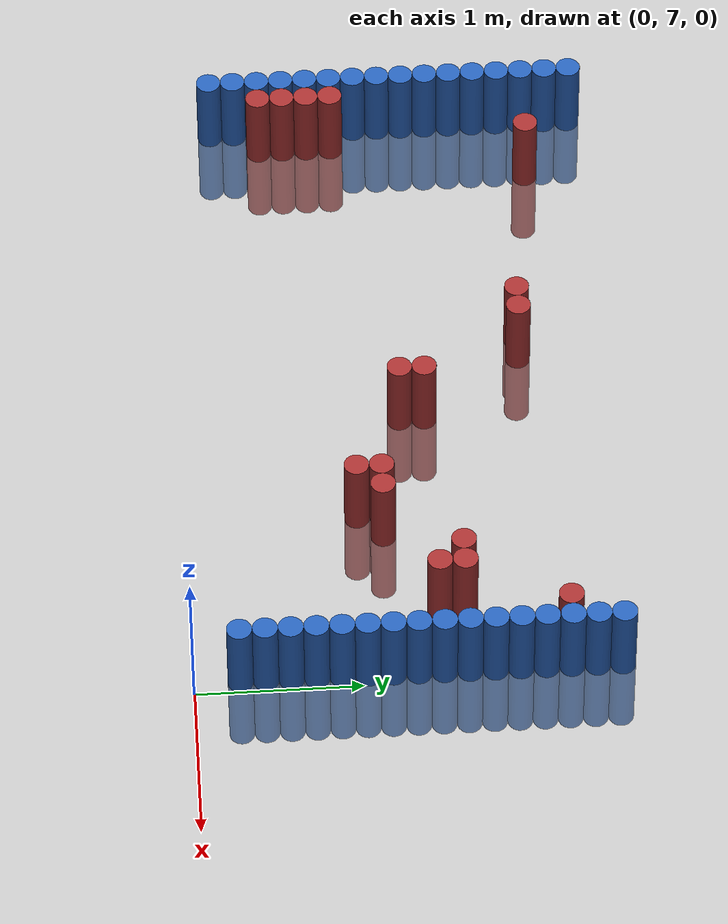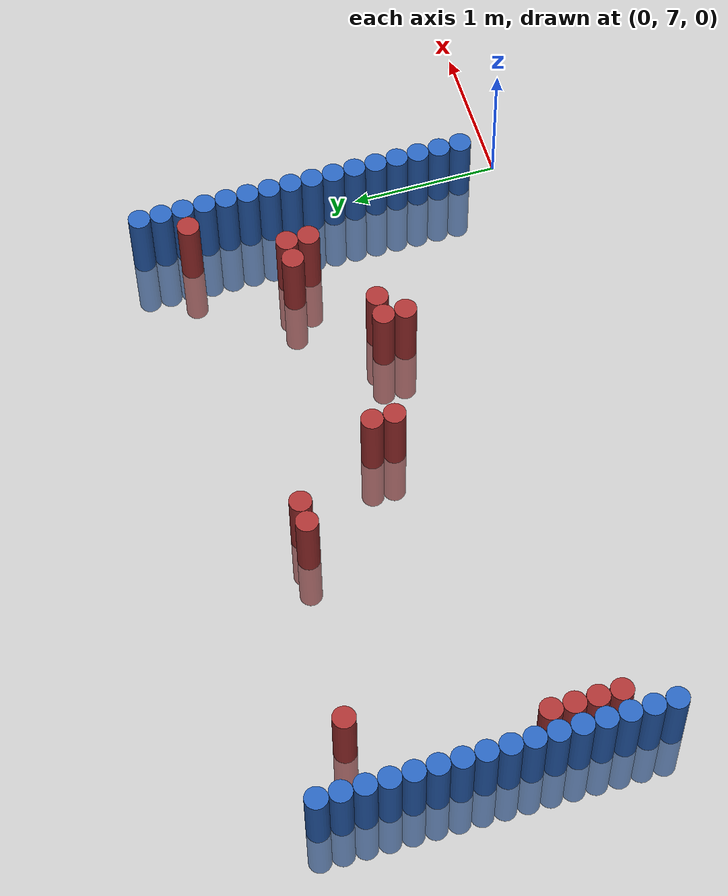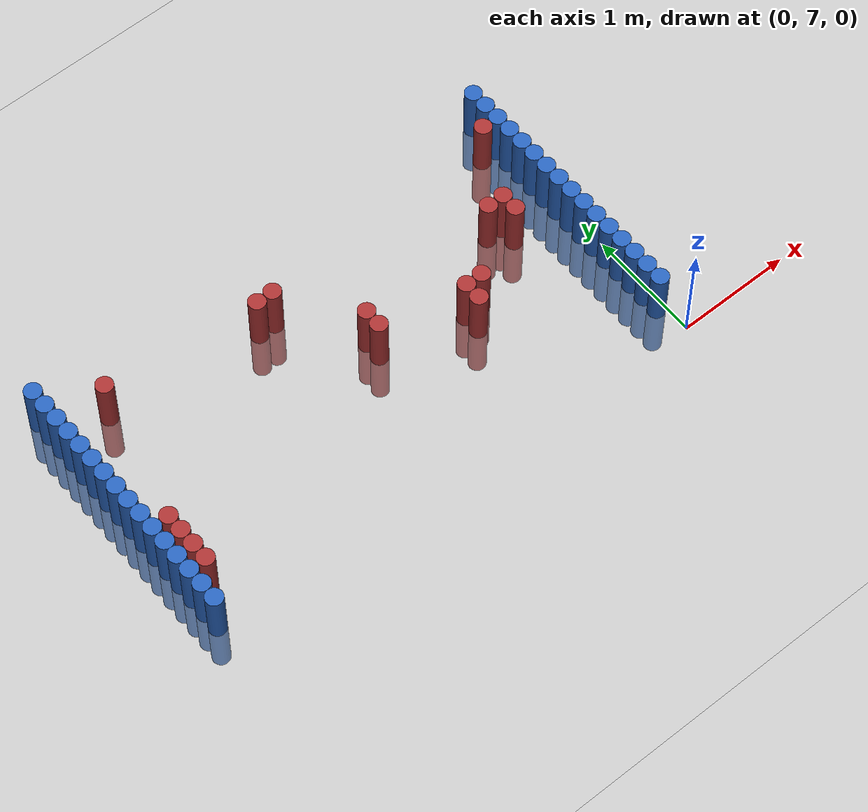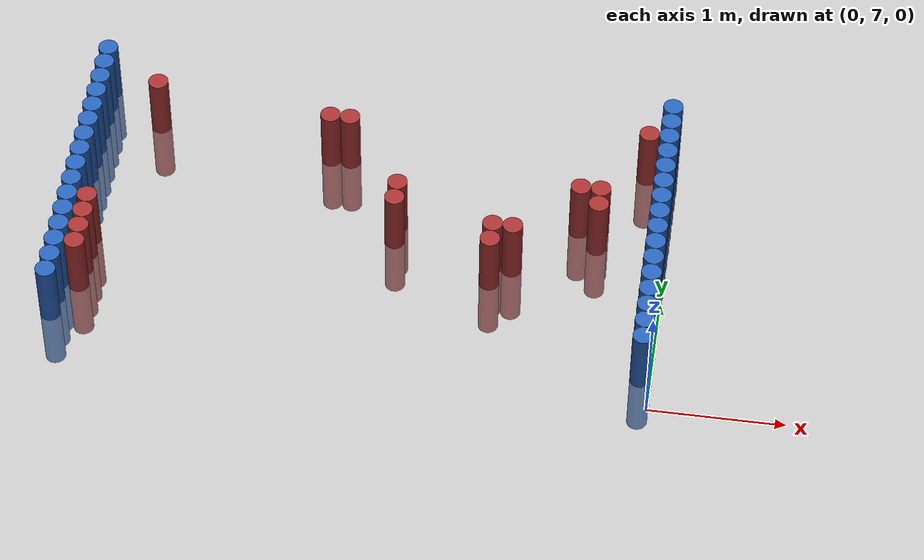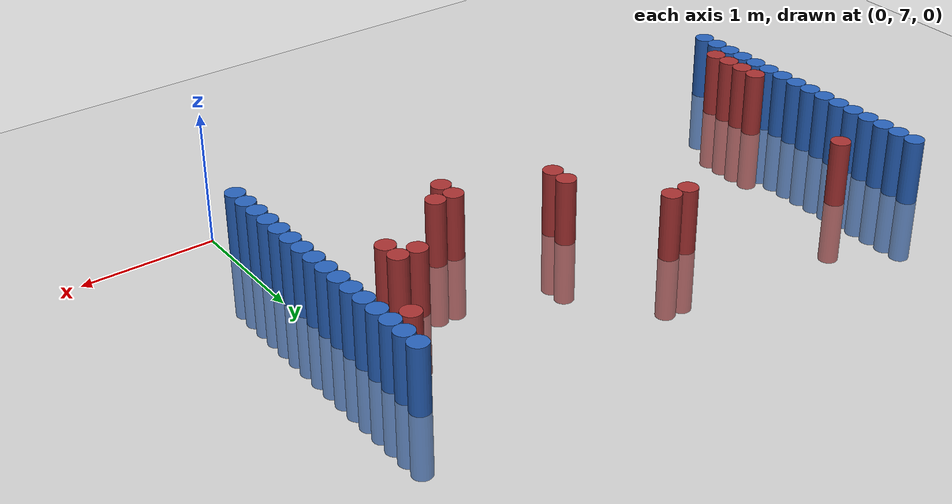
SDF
<sdf version="1.6">
 <world name="world_107">
  <model name="ground_plane">
   <static>1</static>
   <link name="link">
    <collision name="collision">
     <geometry><plane><normal>0 0 1</normal><size>100 100</size></plane></geometry>
     <surface><friction><ode><mu>100</mu><mu2>50</mu2></ode></friction></surface>
    </collision>
    <visual name="visual">
     <cast_shadows>0</cast_shadows>
     <geometry><plane><normal>0 0 1</normal><size>100 100</size></plane></geometry>
     <material>
      <script><uri>file://media/materials/scripts/gazebo.material</uri><name>Gazebo/Grey</name></script>
     </material>
    </visual>
   </link>
  </model>
  <model name="unit_cylinder_110">
   <static>1</static>
   <pose>-4.425000 7.275000 0.000000 0.000000 0.000000 0.000000</pose>
   <link name="link">
    <inertial>
     <mass>1</mass>
     <inertia><ixx>0.145833</ixx><ixy>0</ixy><ixz>0</ixz><iyy>0.145833</iyy><iyz>0</iyz><izz>0.125</izz></inertia>
    </inertial>
    <collision name="collision">
     <geometry><cylinder><radius>0.075000</radius><length>1</length></cylinder></geometry>
    </collision>
    <visual name="visual">
     <geometry><cylinder><radius>0.075000</radius><length>1</length></cylinder></geometry>
     <material>
      <ambient>0.152000 0.379000 0.720000 1</ambient>
      <diffuse>0.152000 0.379000 0.720000 1</diffuse>
     </material>
     <material>
      <script><name>Gazebo/Grey</name><uri>file://media/materials/scripts/gazebo.material</uri></script>
     </material>
    </visual>
   </link>
  </model>
  <model name="unit_cylinder_111">
   <static>1</static>
   <pose>-4.425000 7.425000 0.000000 0.000000 0.000000 0.000000</pose>
   <link name="link">
    <inertial>
     <mass>1</mass>
     <inertia><ixx>0.145833</ixx><ixy>0</ixy><ixz>0</ixz><iyy>0.145833</iyy><iyz>0</iyz><izz>0.125</izz></inertia>
    </inertial>
    <collision name="collision">
     <geometry><cylinder><radius>0.075000</radius><length>1</length></cylinder></geometry>
    </collision>
    <visual name="visual">
     <geometry><cylinder><radius>0.075000</radius><length>1</length></cylinder></geometry>
     <material>
      <ambient>0.152000 0.379000 0.720000 1</ambient>
      <diffuse>0.152000 0.379000 0.720000 1</diffuse>
     </material>
     <material>
      <script><name>Gazebo/Grey</name><uri>file://media/materials/scripts/gazebo.material</uri></script>
     </material>
    </visual>
   </link>
  </model>
  <model name="unit_cylinder_112">
   <static>1</static>
   <pose>-4.425000 7.575000 0.000000 0.000000 0.000000 0.000000</pose>
   <link name="link">
    <inertial>
     <mass>1</mass>
     <inertia><ixx>0.145833</ixx><ixy>0</ixy><ixz>0</ixz><iyy>0.145833</iyy><iyz>0</iyz><izz>0.125</izz></inertia>
    </inertial>
    <collision name="collision">
     <geometry><cylinder><radius>0.075000</radius><length>1</length></cylinder></geometry>
    </collision>
    <visual name="visual">
     <geometry><cylinder><radius>0.075000</radius><length>1</length></cylinder></geometry>
     <material>
      <ambient>0.152000 0.379000 0.720000 1</ambient>
      <diffuse>0.152000 0.379000 0.720000 1</diffuse>
     </material>
     <material>
      <script><name>Gazebo/Grey</name><uri>file://media/materials/scripts/gazebo.material</uri></script>
     </material>
    </visual>
   </link>
  </model>
  <model name="unit_cylinder_113">
   <static>1</static>
   <pose>-4.425000 7.725000 0.000000 0.000000 0.000000 0.000000</pose>
   <link name="link">
    <inertial>
     <mass>1</mass>
     <inertia><ixx>0.145833</ixx><ixy>0</ixy><ixz>0</ixz><iyy>0.145833</iyy><iyz>0</iyz><izz>0.125</izz></inertia>
    </inertial>
    <collision name="collision">
     <geometry><cylinder><radius>0.075000</radius><length>1</length></cylinder></geometry>
    </collision>
    <visual name="visual">
     <geometry><cylinder><radius>0.075000</radius><length>1</length></cylinder></geometry>
     <material>
      <ambient>0.152000 0.379000 0.720000 1</ambient>
      <diffuse>0.152000 0.379000 0.720000 1</diffuse>
     </material>
     <material>
      <script><name>Gazebo/Grey</name><uri>file://media/materials/scripts/gazebo.material</uri></script>
     </material>
    </visual>
   </link>
  </model>
  <model name="unit_cylinder_114">
   <static>1</static>
   <pose>-4.425000 7.875000 0.000000 0.000000 0.000000 0.000000</pose>
   <link name="link">
    <inertial>
     <mass>1</mass>
     <inertia><ixx>0.145833</ixx><ixy>0</ixy><ixz>0</ixz><iyy>0.145833</iyy><iyz>0</iyz><izz>0.125</izz></inertia>
    </inertial>
    <collision name="collision">
     <geometry><cylinder><radius>0.075000</radius><length>1</length></cylinder></geometry>
    </collision>
    <visual name="visual">
     <geometry><cylinder><radius>0.075000</radius><length>1</length></cylinder></geometry>
     <material>
      <ambient>0.152000 0.379000 0.720000 1</ambient>
      <diffuse>0.152000 0.379000 0.720000 1</diffuse>
     </material>
     <material>
      <script><name>Gazebo/Grey</name><uri>file://media/materials/scripts/gazebo.material</uri></script>
     </material>
    </visual>
   </link>
  </model>
  <model name="unit_cylinder_115">
   <static>1</static>
   <pose>-4.425000 8.025000 0.000000 0.000000 0.000000 0.000000</pose>
   <link name="link">
    <inertial>
     <mass>1</mass>
     <inertia><ixx>0.145833</ixx><ixy>0</ixy><ixz>0</ixz><iyy>0.145833</iyy><iyz>0</iyz><izz>0.125</izz></inertia>
    </inertial>
    <collision name="collision">
     <geometry><cylinder><radius>0.075000</radius><length>1</length></cylinder></geometry>
    </collision>
    <visual name="visual">
     <geometry><cylinder><radius>0.075000</radius><length>1</length></cylinder></geometry>
     <material>
      <ambient>0.152000 0.379000 0.720000 1</ambient>
      <diffuse>0.152000 0.379000 0.720000 1</diffuse>
     </material>
     <material>
      <script><name>Gazebo/Grey</name><uri>file://media/materials/scripts/gazebo.material</uri></script>
     </material>
    </visual>
   </link>
  </model>
  <model name="unit_cylinder_116">
   <static>1</static>
   <pose>-4.425000 8.175000 0.000000 0.000000 0.000000 0.000000</pose>
   <link name="link">
    <inertial>
     <mass>1</mass>
     <inertia><ixx>0.145833</ixx><ixy>0</ixy><ixz>0</ixz><iyy>0.145833</iyy><iyz>0</iyz><izz>0.125</izz></inertia>
    </inertial>
    <collision name="collision">
     <geometry><cylinder><radius>0.075000</radius><length>1</length></cylinder></geometry>
    </collision>
    <visual name="visual">
     <geometry><cylinder><radius>0.075000</radius><length>1</length></cylinder></geometry>
     <material>
      <ambient>0.152000 0.379000 0.720000 1</ambient>
      <diffuse>0.152000 0.379000 0.720000 1</diffuse>
     </material>
     <material>
      <script><name>Gazebo/Grey</name><uri>file://media/materials/scripts/gazebo.material</uri></script>
     </material>
    </visual>
   </link>
  </model>
  <model name="unit_cylinder_117">
   <static>1</static>
   <pose>-4.425000 8.325000 0.000000 0.000000 0.000000 0.000000</pose>
   <link name="link">
    <inertial>
     <mass>1</mass>
     <inertia><ixx>0.145833</ixx><ixy>0</ixy><ixz>0</ixz><iyy>0.145833</iyy><iyz>0</iyz><izz>0.125</izz></inertia>
    </inertial>
    <collision name="collision">
     <geometry><cylinder><radius>0.075000</radius><length>1</length></cylinder></geometry>
    </collision>
    <visual name="visual">
     <geometry><cylinder><radius>0.075000</radius><length>1</length></cylinder></geometry>
     <material>
      <ambient>0.152000 0.379000 0.720000 1</ambient>
      <diffuse>0.152000 0.379000 0.720000 1</diffuse>
     </material>
     <material>
      <script><name>Gazebo/Grey</name><uri>file://media/materials/scripts/gazebo.material</uri></script>
     </material>
    </visual>
   </link>
  </model>
  <model name="unit_cylinder_118">
   <static>1</static>
   <pose>-4.425000 8.475000 0.000000 0.000000 0.000000 0.000000</pose>
   <link name="link">
    <inertial>
     <mass>1</mass>
     <inertia><ixx>0.145833</ixx><ixy>0</ixy><ixz>0</ixz><iyy>0.145833</iyy><iyz>0</iyz><izz>0.125</izz></inertia>
    </inertial>
    <collision name="collision">
     <geometry><cylinder><radius>0.075000</radius><length>1</length></cylinder></geometry>
    </collision>
    <visual name="visual">
     <geometry><cylinder><radius>0.075000</radius><length>1</length></cylinder></geometry>
     <material>
      <ambient>0.152000 0.379000 0.720000 1</ambient>
      <diffuse>0.152000 0.379000 0.720000 1</diffuse>
     </material>
     <material>
      <script><name>Gazebo/Grey</name><uri>file://media/materials/scripts/gazebo.material</uri></script>
     </material>
    </visual>
   </link>
  </model>
  <model name="unit_cylinder_119">
   <static>1</static>
   <pose>-4.425000 8.625000 0.000000 0.000000 0.000000 0.000000</pose>
   <link name="link">
    <inertial>
     <mass>1</mass>
     <inertia><ixx>0.145833</ixx><ixy>0</ixy><ixz>0</ixz><iyy>0.145833</iyy><iyz>0</iyz><izz>0.125</izz></inertia>
    </inertial>
    <collision name="collision">
     <geometry><cylinder><radius>0.075000</radius><length>1</length></cylinder></geometry>
    </collision>
    <visual name="visual">
     <geometry><cylinder><radius>0.075000</radius><length>1</length></cylinder></geometry>
     <material>
      <ambient>0.152000 0.379000 0.720000 1</ambient>
      <diffuse>0.152000 0.379000 0.720000 1</diffuse>
     </material>
     <material>
      <script><name>Gazebo/Grey</name><uri>file://media/materials/scripts/gazebo.material</uri></script>
     </material>
    </visual>
   </link>
  </model>
  <model name="unit_cylinder_120">
   <static>1</static>
   <pose>-4.425000 8.775000 0.000000 0.000000 0.000000 0.000000</pose>
   <link name="link">
    <inertial>
     <mass>1</mass>
     <inertia><ixx>0.145833</ixx><ixy>0</ixy><ixz>0</ixz><iyy>0.145833</iyy><iyz>0</iyz><izz>0.125</izz></inertia>
    </inertial>
    <collision name="collision">
     <geometry><cylinder><radius>0.075000</radius><length>1</length></cylinder></geometry>
    </collision>
    <visual name="visual">
     <geometry><cylinder><radius>0.075000</radius><length>1</length></cylinder></geometry>
     <material>
      <ambient>0.152000 0.379000 0.720000 1</ambient>
      <diffuse>0.152000 0.379000 0.720000 1</diffuse>
     </material>
     <material>
      <script><name>Gazebo/Grey</name><uri>file://media/materials/scripts/gazebo.material</uri></script>
     </material>
    </visual>
   </link>
  </model>
  <model name="unit_cylinder_121">
   <static>1</static>
   <pose>-4.425000 8.925000 0.000000 0.000000 0.000000 0.000000</pose>
   <link name="link">
    <inertial>
     <mass>1</mass>
     <inertia><ixx>0.145833</ixx><ixy>0</ixy><ixz>0</ixz><iyy>0.145833</iyy><iyz>0</iyz><izz>0.125</izz></inertia>
    </inertial>
    <collision name="collision">
     <geometry><cylinder><radius>0.075000</radius><length>1</length></cylinder></geometry>
    </collision>
    <visual name="visual">
     <geometry><cylinder><radius>0.075000</radius><length>1</length></cylinder></geometry>
     <material>
      <ambient>0.152000 0.379000 0.720000 1</ambient>
      <diffuse>0.152000 0.379000 0.720000 1</diffuse>
     </material>
     <material>
      <script><name>Gazebo/Grey</name><uri>file://media/materials/scripts/gazebo.material</uri></script>
     </material>
    </visual>
   </link>
  </model>
  <model name="unit_cylinder_122">
   <static>1</static>
   <pose>-4.425000 9.075000 0.000000 0.000000 0.000000 0.000000</pose>
   <link name="link">
    <inertial>
     <mass>1</mass>
     <inertia><ixx>0.145833</ixx><ixy>0</ixy><ixz>0</ixz><iyy>0.145833</iyy><iyz>0</iyz><izz>0.125</izz></inertia>
    </inertial>
    <collision name="collision">
     <geometry><cylinder><radius>0.075000</radius><length>1</length></cylinder></geometry>
    </collision>
    <visual name="visual">
     <geometry><cylinder><radius>0.075000</radius><length>1</length></cylinder></geometry>
     <material>
      <ambient>0.152000 0.379000 0.720000 1</ambient>
      <diffuse>0.152000 0.379000 0.720000 1</diffuse>
     </material>
     <material>
      <script><name>Gazebo/Grey</name><uri>file://media/materials/scripts/gazebo.material</uri></script>
     </material>
    </visual>
   </link>
  </model>
  <model name="unit_cylinder_123">
   <static>1</static>
   <pose>-4.425000 9.225000 0.000000 0.000000 0.000000 0.000000</pose>
   <link name="link">
    <inertial>
     <mass>1</mass>
     <inertia><ixx>0.145833</ixx><ixy>0</ixy><ixz>0</ixz><iyy>0.145833</iyy><iyz>0</iyz><izz>0.125</izz></inertia>
    </inertial>
    <collision name="collision">
     <geometry><cylinder><radius>0.075000</radius><length>1</length></cylinder></geometry>
    </collision>
    <visual name="visual">
     <geometry><cylinder><radius>0.075000</radius><length>1</length></cylinder></geometry>
     <material>
      <ambient>0.152000 0.379000 0.720000 1</ambient>
      <diffuse>0.152000 0.379000 0.720000 1</diffuse>
     </material>
     <material>
      <script><name>Gazebo/Grey</name><uri>file://media/materials/scripts/gazebo.material</uri></script>
     </material>
    </visual>
   </link>
  </model>
  <model name="unit_cylinder_124">
   <static>1</static>
   <pose>-4.425000 9.375000 0.000000 0.000000 0.000000 0.000000</pose>
   <link name="link">
    <inertial>
     <mass>1</mass>
     <inertia><ixx>0.145833</ixx><ixy>0</ixy><ixz>0</ixz><iyy>0.145833</iyy><iyz>0</iyz><izz>0.125</izz></inertia>
    </inertial>
    <collision name="collision">
     <geometry><cylinder><radius>0.075000</radius><length>1</length></cylinder></geometry>
    </collision>
    <visual name="visual">
     <geometry><cylinder><radius>0.075000</radius><length>1</length></cylinder></geometry>
     <material>
      <ambient>0.152000 0.379000 0.720000 1</ambient>
      <diffuse>0.152000 0.379000 0.720000 1</diffuse>
     </material>
     <material>
      <script><name>Gazebo/Grey</name><uri>file://media/materials/scripts/gazebo.material</uri></script>
     </material>
    </visual>
   </link>
  </model>
  <model name="unit_cylinder_125">
   <static>1</static>
   <pose>-4.425000 9.525000 0.000000 0.000000 0.000000 0.000000</pose>
   <link name="link">
    <inertial>
     <mass>1</mass>
     <inertia><ixx>0.145833</ixx><ixy>0</ixy><ixz>0</ixz><iyy>0.145833</iyy><iyz>0</iyz><izz>0.125</izz></inertia>
    </inertial>
    <collision name="collision">
     <geometry><cylinder><radius>0.075000</radius><length>1</length></cylinder></geometry>
    </collision>
    <visual name="visual">
     <geometry><cylinder><radius>0.075000</radius><length>1</length></cylinder></geometry>
     <material>
      <ambient>0.152000 0.379000 0.720000 1</ambient>
      <diffuse>0.152000 0.379000 0.720000 1</diffuse>
     </material>
     <material>
      <script><name>Gazebo/Grey</name><uri>file://media/materials/scripts/gazebo.material</uri></script>
     </material>
    </visual>
   </link>
  </model>
  <model name="unit_cylinder_128">
   <static>1</static>
   <pose>-4.275000 7.575000 0.000000 0.000000 0.000000 0.000000</pose>
   <link name="link">
    <inertial>
     <mass>1</mass>
     <inertia><ixx>0.145833</ixx><ixy>0</ixy><ixz>0</ixz><iyy>0.145833</iyy><iyz>0</iyz><izz>0.125</izz></inertia>
    </inertial>
    <collision name="collision">
     <geometry><cylinder><radius>0.075000</radius><length>1</length></cylinder></geometry>
    </collision>
    <visual name="visual">
     <geometry><cylinder><radius>0.075000</radius><length>1</length></cylinder></geometry>
     <material>
      <ambient>0.648000 0.192000 0.192000 1</ambient>
      <diffuse>0.648000 0.192000 0.192000 1</diffuse>
     </material>
     <material>
      <script><name>Gazebo/Grey</name><uri>file://media/materials/scripts/gazebo.material</uri></script>
     </material>
    </visual>
   </link>
  </model>
  <model name="unit_cylinder_129">
   <static>1</static>
   <pose>-4.275000 7.725000 0.000000 0.000000 0.000000 0.000000</pose>
   <link name="link">
    <inertial>
     <mass>1</mass>
     <inertia><ixx>0.145833</ixx><ixy>0</ixy><ixz>0</ixz><iyy>0.145833</iyy><iyz>0</iyz><izz>0.125</izz></inertia>
    </inertial>
    <collision name="collision">
     <geometry><cylinder><radius>0.075000</radius><length>1</length></cylinder></geometry>
    </collision>
    <visual name="visual">
     <geometry><cylinder><radius>0.075000</radius><length>1</length></cylinder></geometry>
     <material>
      <ambient>0.648000 0.192000 0.192000 1</ambient>
      <diffuse>0.648000 0.192000 0.192000 1</diffuse>
     </material>
     <material>
      <script><name>Gazebo/Grey</name><uri>file://media/materials/scripts/gazebo.material</uri></script>
     </material>
    </visual>
   </link>
  </model>
  <model name="unit_cylinder_130">
   <static>1</static>
   <pose>-4.275000 7.875000 0.000000 0.000000 0.000000 0.000000</pose>
   <link name="link">
    <inertial>
     <mass>1</mass>
     <inertia><ixx>0.145833</ixx><ixy>0</ixy><ixz>0</ixz><iyy>0.145833</iyy><iyz>0</iyz><izz>0.125</izz></inertia>
    </inertial>
    <collision name="collision">
     <geometry><cylinder><radius>0.075000</radius><length>1</length></cylinder></geometry>
    </collision>
    <visual name="visual">
     <geometry><cylinder><radius>0.075000</radius><length>1</length></cylinder></geometry>
     <material>
      <ambient>0.648000 0.192000 0.192000 1</ambient>
      <diffuse>0.648000 0.192000 0.192000 1</diffuse>
     </material>
     <material>
      <script><name>Gazebo/Grey</name><uri>file://media/materials/scripts/gazebo.material</uri></script>
     </material>
    </visual>
   </link>
  </model>
  <model name="unit_cylinder_131">
   <static>1</static>
   <pose>-4.275000 8.025000 0.000000 0.000000 0.000000 0.000000</pose>
   <link name="link">
    <inertial>
     <mass>1</mass>
     <inertia><ixx>0.145833</ixx><ixy>0</ixy><ixz>0</ixz><iyy>0.145833</iyy><iyz>0</iyz><izz>0.125</izz></inertia>
    </inertial>
    <collision name="collision">
     <geometry><cylinder><radius>0.075000</radius><length>1</length></cylinder></geometry>
    </collision>
    <visual name="visual">
     <geometry><cylinder><radius>0.075000</radius><length>1</length></cylinder></geometry>
     <material>
      <ambient>0.648000 0.192000 0.192000 1</ambient>
      <diffuse>0.648000 0.192000 0.192000 1</diffuse>
     </material>
     <material>
      <script><name>Gazebo/Grey</name><uri>file://media/materials/scripts/gazebo.material</uri></script>
     </material>
    </visual>
   </link>
  </model>
  <model name="unit_cylinder_134">
   <static>1</static>
   <pose>-3.975000 9.225000 0.000000 0.000000 0.000000 0.000000</pose>
   <link name="link">
    <inertial>
     <mass>1</mass>
     <inertia><ixx>0.145833</ixx><ixy>0</ixy><ixz>0</ixz><iyy>0.145833</iyy><iyz>0</iyz><izz>0.125</izz></inertia>
    </inertial>
    <collision name="collision">
     <geometry><cylinder><radius>0.075000</radius><length>1</length></cylinder></geometry>
    </collision>
    <visual name="visual">
     <geometry><cylinder><radius>0.075000</radius><length>1</length></cylinder></geometry>
     <material>
      <ambient>0.648000 0.192000 0.192000 1</ambient>
      <diffuse>0.648000 0.192000 0.192000 1</diffuse>
     </material>
     <material>
      <script><name>Gazebo/Grey</name><uri>file://media/materials/scripts/gazebo.material</uri></script>
     </material>
    </visual>
   </link>
  </model>
  <model name="unit_cylinder_148">
   <static>1</static>
   <pose>-2.625000 9.075000 0.000000 0.000000 0.000000 0.000000</pose>
   <link name="link">
    <inertial>
     <mass>1</mass>
     <inertia><ixx>0.145833</ixx><ixy>0</ixy><ixz>0</ixz><iyy>0.145833</iyy><iyz>0</iyz><izz>0.125</izz></inertia>
    </inertial>
    <collision name="collision">
     <geometry><cylinder><radius>0.075000</radius><length>1</length></cylinder></geometry>
    </collision>
    <visual name="visual">
     <geometry><cylinder><radius>0.075000</radius><length>1</length></cylinder></geometry>
     <material>
      <ambient>0.648000 0.192000 0.192000 1</ambient>
      <diffuse>0.648000 0.192000 0.192000 1</diffuse>
     </material>
     <material>
      <script><name>Gazebo/Grey</name><uri>file://media/materials/scripts/gazebo.material</uri></script>
     </material>
    </visual>
   </link>
  </model>
  <model name="unit_cylinder_151">
   <static>1</static>
   <pose>-2.475000 9.075000 0.000000 0.000000 0.000000 0.000000</pose>
   <link name="link">
    <inertial>
     <mass>1</mass>
     <inertia><ixx>0.145833</ixx><ixy>0</ixy><ixz>0</ixz><iyy>0.145833</iyy><iyz>0</iyz><izz>0.125</izz></inertia>
    </inertial>
    <collision name="collision">
     <geometry><cylinder><radius>0.075000</radius><length>1</length></cylinder></geometry>
    </collision>
    <visual name="visual">
     <geometry><cylinder><radius>0.075000</radius><length>1</length></cylinder></geometry>
     <material>
      <ambient>0.648000 0.192000 0.192000 1</ambient>
      <diffuse>0.648000 0.192000 0.192000 1</diffuse>
     </material>
     <material>
      <script><name>Gazebo/Grey</name><uri>file://media/materials/scripts/gazebo.material</uri></script>
     </material>
    </visual>
   </link>
  </model>
  <model name="unit_cylinder_154">
   <static>1</static>
   <pose>-2.025000 8.325000 0.000000 0.000000 0.000000 0.000000</pose>
   <link name="link">
    <inertial>
     <mass>1</mass>
     <inertia><ixx>0.145833</ixx><ixy>0</ixy><ixz>0</ixz><iyy>0.145833</iyy><iyz>0</iyz><izz>0.125</izz></inertia>
    </inertial>
    <collision name="collision">
     <geometry><cylinder><radius>0.075000</radius><length>1</length></cylinder></geometry>
    </collision>
    <visual name="visual">
     <geometry><cylinder><radius>0.075000</radius><length>1</length></cylinder></geometry>
     <material>
      <ambient>0.648000 0.192000 0.192000 1</ambient>
      <diffuse>0.648000 0.192000 0.192000 1</diffuse>
     </material>
     <material>
      <script><name>Gazebo/Grey</name><uri>file://media/materials/scripts/gazebo.material</uri></script>
     </material>
    </visual>
   </link>
  </model>
  <model name="unit_cylinder_155">
   <static>1</static>
   <pose>-2.025000 8.475000 0.000000 0.000000 0.000000 0.000000</pose>
   <link name="link">
    <inertial>
     <mass>1</mass>
     <inertia><ixx>0.145833</ixx><ixy>0</ixy><ixz>0</ixz><iyy>0.145833</iyy><iyz>0</iyz><izz>0.125</izz></inertia>
    </inertial>
    <collision name="collision">
     <geometry><cylinder><radius>0.075000</radius><length>1</length></cylinder></geometry>
    </collision>
    <visual name="visual">
     <geometry><cylinder><radius>0.075000</radius><length>1</length></cylinder></geometry>
     <material>
      <ambient>0.648000 0.192000 0.192000 1</ambient>
      <diffuse>0.648000 0.192000 0.192000 1</diffuse>
     </material>
     <material>
      <script><name>Gazebo/Grey</name><uri>file://media/materials/scripts/gazebo.material</uri></script>
     </material>
    </visual>
   </link>
  </model>
  <model name="unit_cylinder_156">
   <static>1</static>
   <pose>-1.275000 8.025000 0.000000 0.000000 0.000000 0.000000</pose>
   <link name="link">
    <inertial>
     <mass>1</mass>
     <inertia><ixx>0.145833</ixx><ixy>0</ixy><ixz>0</ixz><iyy>0.145833</iyy><iyz>0</iyz><izz>0.125</izz></inertia>
    </inertial>
    <collision name="collision">
     <geometry><cylinder><radius>0.075000</radius><length>1</length></cylinder></geometry>
    </collision>
    <visual name="visual">
     <geometry><cylinder><radius>0.075000</radius><length>1</length></cylinder></geometry>
     <material>
      <ambient>0.648000 0.192000 0.192000 1</ambient>
      <diffuse>0.648000 0.192000 0.192000 1</diffuse>
     </material>
     <material>
      <script><name>Gazebo/Grey</name><uri>file://media/materials/scripts/gazebo.material</uri></script>
     </material>
    </visual>
   </link>
  </model>
  <model name="unit_cylinder_157">
   <static>1</static>
   <pose>-1.275000 8.175000 0.000000 0.000000 0.000000 0.000000</pose>
   <link name="link">
    <inertial>
     <mass>1</mass>
     <inertia><ixx>0.145833</ixx><ixy>0</ixy><ixz>0</ixz><iyy>0.145833</iyy><iyz>0</iyz><izz>0.125</izz></inertia>
    </inertial>
    <collision name="collision">
     <geometry><cylinder><radius>0.075000</radius><length>1</length></cylinder></geometry>
    </collision>
    <visual name="visual">
     <geometry><cylinder><radius>0.075000</radius><length>1</length></cylinder></geometry>
     <material>
      <ambient>0.648000 0.192000 0.192000 1</ambient>
      <diffuse>0.648000 0.192000 0.192000 1</diffuse>
     </material>
     <material>
      <script><name>Gazebo/Grey</name><uri>file://media/materials/scripts/gazebo.material</uri></script>
     </material>
    </visual>
   </link>
  </model>
  <model name="unit_cylinder_158">
   <static>1</static>
   <pose>-1.125000 8.175000 0.000000 0.000000 0.000000 0.000000</pose>
   <link name="link">
    <inertial>
     <mass>1</mass>
     <inertia><ixx>0.145833</ixx><ixy>0</ixy><ixz>0</ixz><iyy>0.145833</iyy><iyz>0</iyz><izz>0.125</izz></inertia>
    </inertial>
    <collision name="collision">
     <geometry><cylinder><radius>0.075000</radius><length>1</length></cylinder></geometry>
    </collision>
    <visual name="visual">
     <geometry><cylinder><radius>0.075000</radius><length>1</length></cylinder></geometry>
     <material>
      <ambient>0.648000 0.192000 0.192000 1</ambient>
      <diffuse>0.648000 0.192000 0.192000 1</diffuse>
     </material>
     <material>
      <script><name>Gazebo/Grey</name><uri>file://media/materials/scripts/gazebo.material</uri></script>
     </material>
    </visual>
   </link>
  </model>
  <model name="unit_cylinder_159">
   <static>1</static>
   <pose>-0.675000 8.625000 0.000000 0.000000 0.000000 0.000000</pose>
   <link name="link">
    <inertial>
     <mass>1</mass>
     <inertia><ixx>0.145833</ixx><ixy>0</ixy><ixz>0</ixz><iyy>0.145833</iyy><iyz>0</iyz><izz>0.125</izz></inertia>
    </inertial>
    <collision name="collision">
     <geometry><cylinder><radius>0.075000</radius><length>1</length></cylinder></geometry>
    </collision>
    <visual name="visual">
     <geometry><cylinder><radius>0.075000</radius><length>1</length></cylinder></geometry>
     <material>
      <ambient>0.648000 0.192000 0.192000 1</ambient>
      <diffuse>0.648000 0.192000 0.192000 1</diffuse>
     </material>
     <material>
      <script><name>Gazebo/Grey</name><uri>file://media/materials/scripts/gazebo.material</uri></script>
     </material>
    </visual>
   </link>
  </model>
  <model name="unit_cylinder_160">
   <static>1</static>
   <pose>-0.525000 8.475000 0.000000 0.000000 0.000000 0.000000</pose>
   <link name="link">
    <inertial>
     <mass>1</mass>
     <inertia><ixx>0.145833</ixx><ixy>0</ixy><ixz>0</ixz><iyy>0.145833</iyy><iyz>0</iyz><izz>0.125</izz></inertia>
    </inertial>
    <collision name="collision">
     <geometry><cylinder><radius>0.075000</radius><length>1</length></cylinder></geometry>
    </collision>
    <visual name="visual">
     <geometry><cylinder><radius>0.075000</radius><length>1</length></cylinder></geometry>
     <material>
      <ambient>0.648000 0.192000 0.192000 1</ambient>
      <diffuse>0.648000 0.192000 0.192000 1</diffuse>
     </material>
     <material>
      <script><name>Gazebo/Grey</name><uri>file://media/materials/scripts/gazebo.material</uri></script>
     </material>
    </visual>
   </link>
  </model>
  <model name="unit_cylinder_161">
   <static>1</static>
   <pose>-0.525000 8.625000 0.000000 0.000000 0.000000 0.000000</pose>
   <link name="link">
    <inertial>
     <mass>1</mass>
     <inertia><ixx>0.145833</ixx><ixy>0</ixy><ixz>0</ixz><iyy>0.145833</iyy><iyz>0</iyz><izz>0.125</izz></inertia>
    </inertial>
    <collision name="collision">
     <geometry><cylinder><radius>0.075000</radius><length>1</length></cylinder></geometry>
    </collision>
    <visual name="visual">
     <geometry><cylinder><radius>0.075000</radius><length>1</length></cylinder></geometry>
     <material>
      <ambient>0.648000 0.192000 0.192000 1</ambient>
      <diffuse>0.648000 0.192000 0.192000 1</diffuse>
     </material>
     <material>
      <script><name>Gazebo/Grey</name><uri>file://media/materials/scripts/gazebo.material</uri></script>
     </material>
    </visual>
   </link>
  </model>
  <model name="unit_cylinder_162">
   <static>1</static>
   <pose>-0.225000 9.225000 0.000000 0.000000 0.000000 0.000000</pose>
   <link name="link">
    <inertial>
     <mass>1</mass>
     <inertia><ixx>0.145833</ixx><ixy>0</ixy><ixz>0</ixz><iyy>0.145833</iyy><iyz>0</iyz><izz>0.125</izz></inertia>
    </inertial>
    <collision name="collision">
     <geometry><cylinder><radius>0.075000</radius><length>1</length></cylinder></geometry>
    </collision>
    <visual name="visual">
     <geometry><cylinder><radius>0.075000</radius><length>1</length></cylinder></geometry>
     <material>
      <ambient>0.648000 0.192000 0.192000 1</ambient>
      <diffuse>0.648000 0.192000 0.192000 1</diffuse>
     </material>
     <material>
      <script><name>Gazebo/Grey</name><uri>file://media/materials/scripts/gazebo.material</uri></script>
     </material>
    </visual>
   </link>
  </model>
  <model name="unit_cylinder_177">
   <static>1</static>
   <pose>-0.075000 7.275000 0.000000 0.000000 0.000000 0.000000</pose>
   <link name="link">
    <inertial>
     <mass>1</mass>
     <inertia><ixx>0.145833</ixx><ixy>0</ixy><ixz>0</ixz><iyy>0.145833</iyy><iyz>0</iyz><izz>0.125</izz></inertia>
    </inertial>
    <collision name="collision">
     <geometry><cylinder><radius>0.075000</radius><length>1</length></cylinder></geometry>
    </collision>
    <visual name="visual">
     <geometry><cylinder><radius>0.075000</radius><length>1</length></cylinder></geometry>
     <material>
      <ambient>0.152000 0.379000 0.720000 1</ambient>
      <diffuse>0.152000 0.379000 0.720000 1</diffuse>
     </material>
     <material>
      <script><name>Gazebo/Grey</name><uri>file://media/materials/scripts/gazebo.material</uri></script>
     </material>
    </visual>
   </link>
  </model>
  <model name="unit_cylinder_178">
   <static>1</static>
   <pose>-0.075000 7.425000 0.000000 0.000000 0.000000 0.000000</pose>
   <link name="link">
    <inertial>
     <mass>1</mass>
     <inertia><ixx>0.145833</ixx><ixy>0</ixy><ixz>0</ixz><iyy>0.145833</iyy><iyz>0</iyz><izz>0.125</izz></inertia>
    </inertial>
    <collision name="collision">
     <geometry><cylinder><radius>0.075000</radius><length>1</length></cylinder></geometry>
    </collision>
    <visual name="visual">
     <geometry><cylinder><radius>0.075000</radius><length>1</length></cylinder></geometry>
     <material>
      <ambient>0.152000 0.379000 0.720000 1</ambient>
      <diffuse>0.152000 0.379000 0.720000 1</diffuse>
     </material>
     <material>
      <script><name>Gazebo/Grey</name><uri>file://media/materials/scripts/gazebo.material</uri></script>
     </material>
    </visual>
   </link>
  </model>
  <model name="unit_cylinder_179">
   <static>1</static>
   <pose>-0.075000 7.575000 0.000000 0.000000 0.000000 0.000000</pose>
   <link name="link">
    <inertial>
     <mass>1</mass>
     <inertia><ixx>0.145833</ixx><ixy>0</ixy><ixz>0</ixz><iyy>0.145833</iyy><iyz>0</iyz><izz>0.125</izz></inertia>
    </inertial>
    <collision name="collision">
     <geometry><cylinder><radius>0.075000</radius><length>1</length></cylinder></geometry>
    </collision>
    <visual name="visual">
     <geometry><cylinder><radius>0.075000</radius><length>1</length></cylinder></geometry>
     <material>
      <ambient>0.152000 0.379000 0.720000 1</ambient>
      <diffuse>0.152000 0.379000 0.720000 1</diffuse>
     </material>
     <material>
      <script><name>Gazebo/Grey</name><uri>file://media/materials/scripts/gazebo.material</uri></script>
     </material>
    </visual>
   </link>
  </model>
  <model name="unit_cylinder_180">
   <static>1</static>
   <pose>-0.075000 7.725000 0.000000 0.000000 0.000000 0.000000</pose>
   <link name="link">
    <inertial>
     <mass>1</mass>
     <inertia><ixx>0.145833</ixx><ixy>0</ixy><ixz>0</ixz><iyy>0.145833</iyy><iyz>0</iyz><izz>0.125</izz></inertia>
    </inertial>
    <collision name="collision">
     <geometry><cylinder><radius>0.075000</radius><length>1</length></cylinder></geometry>
    </collision>
    <visual name="visual">
     <geometry><cylinder><radius>0.075000</radius><length>1</length></cylinder></geometry>
     <material>
      <ambient>0.152000 0.379000 0.720000 1</ambient>
      <diffuse>0.152000 0.379000 0.720000 1</diffuse>
     </material>
     <material>
      <script><name>Gazebo/Grey</name><uri>file://media/materials/scripts/gazebo.material</uri></script>
     </material>
    </visual>
   </link>
  </model>
  <model name="unit_cylinder_181">
   <static>1</static>
   <pose>-0.075000 7.875000 0.000000 0.000000 0.000000 0.000000</pose>
   <link name="link">
    <inertial>
     <mass>1</mass>
     <inertia><ixx>0.145833</ixx><ixy>0</ixy><ixz>0</ixz><iyy>0.145833</iyy><iyz>0</iyz><izz>0.125</izz></inertia>
    </inertial>
    <collision name="collision">
     <geometry><cylinder><radius>0.075000</radius><length>1</length></cylinder></geometry>
    </collision>
    <visual name="visual">
     <geometry><cylinder><radius>0.075000</radius><length>1</length></cylinder></geometry>
     <material>
      <ambient>0.152000 0.379000 0.720000 1</ambient>
      <diffuse>0.152000 0.379000 0.720000 1</diffuse>
     </material>
     <material>
      <script><name>Gazebo/Grey</name><uri>file://media/materials/scripts/gazebo.material</uri></script>
     </material>
    </visual>
   </link>
  </model>
  <model name="unit_cylinder_182">
   <static>1</static>
   <pose>-0.075000 8.025000 0.000000 0.000000 0.000000 0.000000</pose>
   <link name="link">
    <inertial>
     <mass>1</mass>
     <inertia><ixx>0.145833</ixx><ixy>0</ixy><ixz>0</ixz><iyy>0.145833</iyy><iyz>0</iyz><izz>0.125</izz></inertia>
    </inertial>
    <collision name="collision">
     <geometry><cylinder><radius>0.075000</radius><length>1</length></cylinder></geometry>
    </collision>
    <visual name="visual">
     <geometry><cylinder><radius>0.075000</radius><length>1</length></cylinder></geometry>
     <material>
      <ambient>0.152000 0.379000 0.720000 1</ambient>
      <diffuse>0.152000 0.379000 0.720000 1</diffuse>
     </material>
     <material>
      <script><name>Gazebo/Grey</name><uri>file://media/materials/scripts/gazebo.material</uri></script>
     </material>
    </visual>
   </link>
  </model>
  <model name="unit_cylinder_183">
   <static>1</static>
   <pose>-0.075000 8.175000 0.000000 0.000000 0.000000 0.000000</pose>
   <link name="link">
    <inertial>
     <mass>1</mass>
     <inertia><ixx>0.145833</ixx><ixy>0</ixy><ixz>0</ixz><iyy>0.145833</iyy><iyz>0</iyz><izz>0.125</izz></inertia>
    </inertial>
    <collision name="collision">
     <geometry><cylinder><radius>0.075000</radius><length>1</length></cylinder></geometry>
    </collision>
    <visual name="visual">
     <geometry><cylinder><radius>0.075000</radius><length>1</length></cylinder></geometry>
     <material>
      <ambient>0.152000 0.379000 0.720000 1</ambient>
      <diffuse>0.152000 0.379000 0.720000 1</diffuse>
     </material>
     <material>
      <script><name>Gazebo/Grey</name><uri>file://media/materials/scripts/gazebo.material</uri></script>
     </material>
    </visual>
   </link>
  </model>
  <model name="unit_cylinder_184">
   <static>1</static>
   <pose>-0.075000 8.325000 0.000000 0.000000 0.000000 0.000000</pose>
   <link name="link">
    <inertial>
     <mass>1</mass>
     <inertia><ixx>0.145833</ixx><ixy>0</ixy><ixz>0</ixz><iyy>0.145833</iyy><iyz>0</iyz><izz>0.125</izz></inertia>
    </inertial>
    <collision name="collision">
     <geometry><cylinder><radius>0.075000</radius><length>1</length></cylinder></geometry>
    </collision>
    <visual name="visual">
     <geometry><cylinder><radius>0.075000</radius><length>1</length></cylinder></geometry>
     <material>
      <ambient>0.152000 0.379000 0.720000 1</ambient>
      <diffuse>0.152000 0.379000 0.720000 1</diffuse>
     </material>
     <material>
      <script><name>Gazebo/Grey</name><uri>file://media/materials/scripts/gazebo.material</uri></script>
     </material>
    </visual>
   </link>
  </model>
  <model name="unit_cylinder_185">
   <static>1</static>
   <pose>-0.075000 8.475000 0.000000 0.000000 0.000000 0.000000</pose>
   <link name="link">
    <inertial>
     <mass>1</mass>
     <inertia><ixx>0.145833</ixx><ixy>0</ixy><ixz>0</ixz><iyy>0.145833</iyy><iyz>0</iyz><izz>0.125</izz></inertia>
    </inertial>
    <collision name="collision">
     <geometry><cylinder><radius>0.075000</radius><length>1</length></cylinder></geometry>
    </collision>
    <visual name="visual">
     <geometry><cylinder><radius>0.075000</radius><length>1</length></cylinder></geometry>
     <material>
      <ambient>0.152000 0.379000 0.720000 1</ambient>
      <diffuse>0.152000 0.379000 0.720000 1</diffuse>
     </material>
     <material>
      <script><name>Gazebo/Grey</name><uri>file://media/materials/scripts/gazebo.material</uri></script>
     </material>
    </visual>
   </link>
  </model>
  <model name="unit_cylinder_186">
   <static>1</static>
   <pose>-0.075000 8.625000 0.000000 0.000000 0.000000 0.000000</pose>
   <link name="link">
    <inertial>
     <mass>1</mass>
     <inertia><ixx>0.145833</ixx><ixy>0</ixy><ixz>0</ixz><iyy>0.145833</iyy><iyz>0</iyz><izz>0.125</izz></inertia>
    </inertial>
    <collision name="collision">
     <geometry><cylinder><radius>0.075000</radius><length>1</length></cylinder></geometry>
    </collision>
    <visual name="visual">
     <geometry><cylinder><radius>0.075000</radius><length>1</length></cylinder></geometry>
     <material>
      <ambient>0.152000 0.379000 0.720000 1</ambient>
      <diffuse>0.152000 0.379000 0.720000 1</diffuse>
     </material>
     <material>
      <script><name>Gazebo/Grey</name><uri>file://media/materials/scripts/gazebo.material</uri></script>
     </material>
    </visual>
   </link>
  </model>
  <model name="unit_cylinder_187">
   <static>1</static>
   <pose>-0.075000 8.775000 0.000000 0.000000 0.000000 0.000000</pose>
   <link name="link">
    <inertial>
     <mass>1</mass>
     <inertia><ixx>0.145833</ixx><ixy>0</ixy><ixz>0</ixz><iyy>0.145833</iyy><iyz>0</iyz><izz>0.125</izz></inertia>
    </inertial>
    <collision name="collision">
     <geometry><cylinder><radius>0.075000</radius><length>1</length></cylinder></geometry>
    </collision>
    <visual name="visual">
     <geometry><cylinder><radius>0.075000</radius><length>1</length></cylinder></geometry>
     <material>
      <ambient>0.152000 0.379000 0.720000 1</ambient>
      <diffuse>0.152000 0.379000 0.720000 1</diffuse>
     </material>
     <material>
      <script><name>Gazebo/Grey</name><uri>file://media/materials/scripts/gazebo.material</uri></script>
     </material>
    </visual>
   </link>
  </model>
  <model name="unit_cylinder_188">
   <static>1</static>
   <pose>-0.075000 8.925000 0.000000 0.000000 0.000000 0.000000</pose>
   <link name="link">
    <inertial>
     <mass>1</mass>
     <inertia><ixx>0.145833</ixx><ixy>0</ixy><ixz>0</ixz><iyy>0.145833</iyy><iyz>0</iyz><izz>0.125</izz></inertia>
    </inertial>
    <collision name="collision">
     <geometry><cylinder><radius>0.075000</radius><length>1</length></cylinder></geometry>
    </collision>
    <visual name="visual">
     <geometry><cylinder><radius>0.075000</radius><length>1</length></cylinder></geometry>
     <material>
      <ambient>0.152000 0.379000 0.720000 1</ambient>
      <diffuse>0.152000 0.379000 0.720000 1</diffuse>
     </material>
     <material>
      <script><name>Gazebo/Grey</name><uri>file://media/materials/scripts/gazebo.material</uri></script>
     </material>
    </visual>
   </link>
  </model>
  <model name="unit_cylinder_189">
   <static>1</static>
   <pose>-0.075000 9.075000 0.000000 0.000000 0.000000 0.000000</pose>
   <link name="link">
    <inertial>
     <mass>1</mass>
     <inertia><ixx>0.145833</ixx><ixy>0</ixy><ixz>0</ixz><iyy>0.145833</iyy><iyz>0</iyz><izz>0.125</izz></inertia>
    </inertial>
    <collision name="collision">
     <geometry><cylinder><radius>0.075000</radius><length>1</length></cylinder></geometry>
    </collision>
    <visual name="visual">
     <geometry><cylinder><radius>0.075000</radius><length>1</length></cylinder></geometry>
     <material>
      <ambient>0.152000 0.379000 0.720000 1</ambient>
      <diffuse>0.152000 0.379000 0.720000 1</diffuse>
     </material>
     <material>
      <script><name>Gazebo/Grey</name><uri>file://media/materials/scripts/gazebo.material</uri></script>
     </material>
    </visual>
   </link>
  </model>
  <model name="unit_cylinder_190">
   <static>1</static>
   <pose>-0.075000 9.225000 0.000000 0.000000 0.000000 0.000000</pose>
   <link name="link">
    <inertial>
     <mass>1</mass>
     <inertia><ixx>0.145833</ixx><ixy>0</ixy><ixz>0</ixz><iyy>0.145833</iyy><iyz>0</iyz><izz>0.125</izz></inertia>
    </inertial>
    <collision name="collision">
     <geometry><cylinder><radius>0.075000</radius><length>1</length></cylinder></geometry>
    </collision>
    <visual name="visual">
     <geometry><cylinder><radius>0.075000</radius><length>1</length></cylinder></geometry>
     <material>
      <ambient>0.152000 0.379000 0.720000 1</ambient>
      <diffuse>0.152000 0.379000 0.720000 1</diffuse>
     </material>
     <material>
      <script><name>Gazebo/Grey</name><uri>file://media/materials/scripts/gazebo.material</uri></script>
     </material>
    </visual>
   </link>
  </model>
  <model name="unit_cylinder_191">
   <static>1</static>
   <pose>-0.075000 9.375000 0.000000 0.000000 0.000000 0.000000</pose>
   <link name="link">
    <inertial>
     <mass>1</mass>
     <inertia><ixx>0.145833</ixx><ixy>0</ixy><ixz>0</ixz><iyy>0.145833</iyy><iyz>0</iyz><izz>0.125</izz></inertia>
    </inertial>
    <collision name="collision">
     <geometry><cylinder><radius>0.075000</radius><length>1</length></cylinder></geometry>
    </collision>
    <visual name="visual">
     <geometry><cylinder><radius>0.075000</radius><length>1</length></cylinder></geometry>
     <material>
      <ambient>0.152000 0.379000 0.720000 1</ambient>
      <diffuse>0.152000 0.379000 0.720000 1</diffuse>
     </material>
     <material>
      <script><name>Gazebo/Grey</name><uri>file://media/materials/scripts/gazebo.material</uri></script>
     </material>
    </visual>
   </link>
  </model>
  <model name="unit_cylinder_192">
   <static>1</static>
   <pose>-0.075000 9.525000 0.000000 0.000000 0.000000 0.000000</pose>
   <link name="link">
    <inertial>
     <mass>1</mass>
     <inertia><ixx>0.145833</ixx><ixy>0</ixy><ixz>0</ixz><iyy>0.145833</iyy><iyz>0</iyz><izz>0.125</izz></inertia>
    </inertial>
    <collision name="collision">
     <geometry><cylinder><radius>0.075000</radius><length>1</length></cylinder></geometry>
    </collision>
    <visual name="visual">
     <geometry><cylinder><radius>0.075000</radius><length>1</length></cylinder></geometry>
     <material>
      <ambient>0.152000 0.379000 0.720000 1</ambient>
      <diffuse>0.152000 0.379000 0.720000 1</diffuse>
     </material>
     <material>
      <script><name>Gazebo/Grey</name><uri>file://media/materials/scripts/gazebo.material</uri></script>
     </material>
    </visual>
   </link>
  </model>
 </world>
</sdf>
